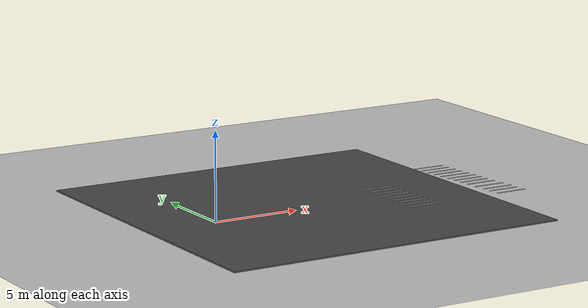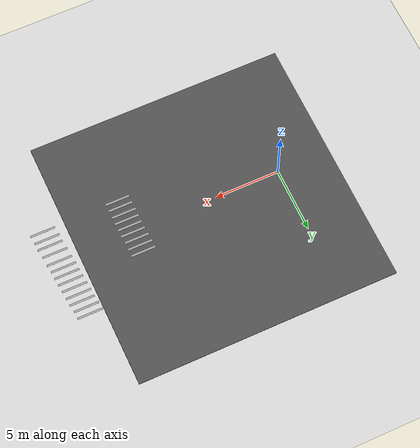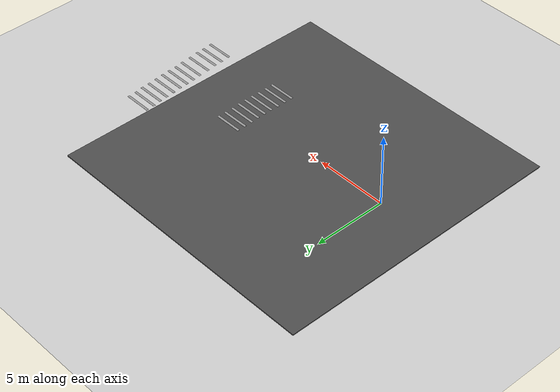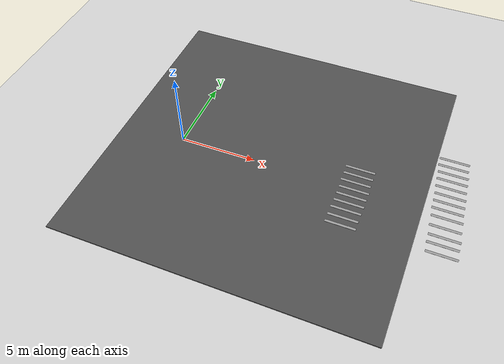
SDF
<sdf version="1.7">
 <world name="default">
  <model name="ground_plane">
   <static>1</static>
   <link name="link">
    <collision name="collision">
     <geometry><plane><normal>0 0 1</normal><size>100 100</size></plane></geometry>
     <surface><friction><ode><mu>100</mu><mu2>50</mu2></ode></friction></surface>
    </collision>
    <visual name="visual">
     <cast_shadows>0</cast_shadows>
     <geometry><plane><normal>0 0 1</normal><size>100 100</size></plane></geometry>
     <material>
      <script><uri>file://media/materials/scripts/gazebo.material</uri><name>Gazebo/Grey</name></script>
     </material>
    </visual>
   </link>
  </model>
  <model name="asphalt_plane">
   <static>1</static>
   <link name="link">
    <collision name="collision"><geometry><box><size>20 20.0001 0.1</size></box></geometry></collision>
    <visual name="visual">
     <cast_shadows>0</cast_shadows>
     <geometry><box><size>20 20.0001 0.1</size></box></geometry>
     <material>
      <script>
       <uri>model://asphalt_plane/materials/scripts</uri>
       <uri>model://asphalt_plane/materials/textures</uri>
       <name>vrc/asphalt</name>
      </script>
     </material>
    </visual>
   </link>
   <pose>5.82756 0.79161 0 0 -0 0</pose>
  </model>
  <model name="unit_box_clone_3_clone">
   <pose>11.6103 -2.77848 0.053193 0 -0 0.000169</pose>
   <link name="link">
    <inertial>
     <mass>1</mass>
     <inertia>
      <ixx>0.166667</ixx>
      <ixy>0</ixy>
      <ixz>0</ixz>
      <iyy>0.166667</iyy>
      <iyz>0</iyz>
      <izz>0.166667</izz>
     </inertia>
    </inertial>
    <collision name="collision"><geometry><box><size>1.90796 0.165074 0.006387</size></box></geometry></collision>
    <visual name="visual">
     <geometry><box><size>1.90796 0.165074 0.006387</size></box></geometry>
     <material>
      <script><name>Gazebo/Grey</name><uri>file://media/materials/scripts/gazebo.material</uri></script>
     </material>
    </visual>
   </link>
  </model>
  <model name="unit_box_clone_3_clone_0">
   <pose>11.5996 -2.2243 0.053193 0 -0 0.000169</pose>
   <link name="link">
    <inertial>
     <mass>1</mass>
     <inertia>
      <ixx>0.166667</ixx>
      <ixy>0</ixy>
      <ixz>0</ixz>
      <iyy>0.166667</iyy>
      <iyz>0</iyz>
      <izz>0.166667</izz>
     </inertia>
    </inertial>
    <collision name="collision"><geometry><box><size>1.90796 0.165074 0.006387</size></box></geometry></collision>
    <visual name="visual">
     <geometry><box><size>1.90796 0.165074 0.006387</size></box></geometry>
     <material>
      <script><name>Gazebo/Grey</name><uri>file://media/materials/scripts/gazebo.material</uri></script>
     </material>
    </visual>
   </link>
  </model>
  <model name="unit_box_clone_3_clone_1">
   <pose>11.5931 -1.6331 0.053193 0 -0 0.000169</pose>
   <link name="link">
    <inertial>
     <mass>1</mass>
     <inertia>
      <ixx>0.166667</ixx>
      <ixy>0</ixy>
      <ixz>0</ixz>
      <iyy>0.166667</iyy>
      <iyz>0</iyz>
      <izz>0.166667</izz>
     </inertia>
    </inertial>
    <collision name="collision"><geometry><box><size>1.90796 0.165074 0.006387</size></box></geometry></collision>
    <visual name="visual">
     <geometry><box><size>1.90796 0.165074 0.006387</size></box></geometry>
     <material>
      <script><name>Gazebo/Grey</name><uri>file://media/materials/scripts/gazebo.material</uri></script>
     </material>
    </visual>
   </link>
  </model>
  <model name="unit_box_clone_3_clone_2">
   <pose>11.6174 -1.07884 0.053193 0 -0 0.000169</pose>
   <link name="link">
    <inertial>
     <mass>1</mass>
     <inertia>
      <ixx>0.166667</ixx>
      <ixy>0</ixy>
      <ixz>0</ixz>
      <iyy>0.166667</iyy>
      <iyz>0</iyz>
      <izz>0.166667</izz>
     </inertia>
    </inertial>
    <collision name="collision"><geometry><box><size>1.90796 0.165074 0.006387</size></box></geometry></collision>
    <visual name="visual">
     <geometry><box><size>1.90796 0.165074 0.006387</size></box></geometry>
     <material>
      <script><name>Gazebo/Grey</name><uri>file://media/materials/scripts/gazebo.material</uri></script>
     </material>
    </visual>
   </link>
  </model>
  <model name="unit_box_clone_3_clone_3">
   <pose>11.605 -0.530038 0.053193 0 -0 0.000169</pose>
   <link name="link">
    <inertial>
     <mass>1</mass>
     <inertia>
      <ixx>0.166667</ixx>
      <ixy>0</ixy>
      <ixz>0</ixz>
      <iyy>0.166667</iyy>
      <iyz>0</iyz>
      <izz>0.166667</izz>
     </inertia>
    </inertial>
    <collision name="collision"><geometry><box><size>1.90796 0.165074 0.006387</size></box></geometry></collision>
    <visual name="visual">
     <geometry><box><size>1.90796 0.165074 0.006387</size></box></geometry>
     <material>
      <script><name>Gazebo/Grey</name><uri>file://media/materials/scripts/gazebo.material</uri></script>
     </material>
    </visual>
   </link>
  </model>
  <model name="unit_box_clone_3_clone_4">
   <pose>11.6043 0.019375 0.053193 0 -0 0.000169</pose>
   <link name="link">
    <inertial>
     <mass>1</mass>
     <inertia>
      <ixx>0.166667</ixx>
      <ixy>0</ixy>
      <ixz>0</ixz>
      <iyy>0.166667</iyy>
      <iyz>0</iyz>
      <izz>0.166667</izz>
     </inertia>
    </inertial>
    <collision name="collision"><geometry><box><size>1.90796 0.165074 0.006387</size></box></geometry></collision>
    <visual name="visual">
     <geometry><box><size>1.90796 0.165074 0.006387</size></box></geometry>
     <material>
      <script><name>Gazebo/Grey</name><uri>file://media/materials/scripts/gazebo.material</uri></script>
     </material>
    </visual>
   </link>
  </model>
  <model name="unit_box_clone_3_clone_4_clone">
   <pose>11.5465 0.589654 0.053193 0 -0 0.000169</pose>
   <link name="link">
    <inertial>
     <mass>1</mass>
     <inertia>
      <ixx>0.166667</ixx>
      <ixy>0</ixy>
      <ixz>0</ixz>
      <iyy>0.166667</iyy>
      <iyz>0</iyz>
      <izz>0.166667</izz>
     </inertia>
    </inertial>
    <collision name="collision"><geometry><box><size>1.90796 0.165074 0.006387</size></box></geometry></collision>
    <visual name="visual">
     <geometry><box><size>1.90796 0.165074 0.006387</size></box></geometry>
     <material>
      <script><name>Gazebo/Grey</name><uri>file://media/materials/scripts/gazebo.material</uri></script>
     </material>
    </visual>
   </link>
  </model>
  <model name="unit_box_clone_3_clone_4_clone_0">
   <pose>11.5365 1.16834 0.053193 0 -0 0.000169</pose>
   <link name="link">
    <inertial>
     <mass>1</mass>
     <inertia>
      <ixx>0.166667</ixx>
      <ixy>0</ixy>
      <ixz>0</ixz>
      <iyy>0.166667</iyy>
      <iyz>0</iyz>
      <izz>0.166667</izz>
     </inertia>
    </inertial>
    <collision name="collision"><geometry><box><size>1.90796 0.165074 0.006387</size></box></geometry></collision>
    <visual name="visual">
     <geometry><box><size>1.90796 0.165074 0.006387</size></box></geometry>
     <material>
      <script><name>Gazebo/Grey</name><uri>file://media/materials/scripts/gazebo.material</uri></script>
     </material>
    </visual>
   </link>
  </model>
  <model name="unit_box_clone_3_clone_4_clone_1">
   <pose>11.5239 1.72543 0.053193 0 -0 0.000169</pose>
   <link name="link">
    <inertial>
     <mass>1</mass>
     <inertia>
      <ixx>0.166667</ixx>
      <ixy>0</ixy>
      <ixz>0</ixz>
      <iyy>0.166667</iyy>
      <iyz>0</iyz>
      <izz>0.166667</izz>
     </inertia>
    </inertial>
    <collision name="collision"><geometry><box><size>1.90796 0.165074 0.006387</size></box></geometry></collision>
    <visual name="visual">
     <geometry><box><size>1.90796 0.165074 0.006387</size></box></geometry>
     <material>
      <script><name>Gazebo/Grey</name><uri>file://media/materials/scripts/gazebo.material</uri></script>
     </material>
    </visual>
   </link>
  </model>
  <model name="unit_box_clone_3_clone_4_clone_23">
   <pose>16.8665 4.55563 0.053193 0 -0 0.000169</pose>
   <link name="link">
    <inertial>
     <mass>1</mass>
     <inertia>
      <ixx>0.166667</ixx>
      <ixy>0</ixy>
      <ixz>0</ixz>
      <iyy>0.166667</iyy>
      <iyz>0</iyz>
      <izz>0.166667</izz>
     </inertia>
    </inertial>
    <collision name="collision"><geometry><box><size>1.90796 0.165074 0.006387</size></box></geometry></collision>
    <visual name="visual">
     <geometry><box><size>1.90796 0.165074 0.006387</size></box></geometry>
     <material>
      <script><name>Gazebo/Grey</name><uri>file://media/materials/scripts/gazebo.material</uri></script>
     </material>
    </visual>
   </link>
  </model>
  <model name="unit_box_clone_3_clone_4_clone_24">
   <pose>16.8933 3.98392 0.053193 0 -0 0.000169</pose>
   <link name="link">
    <inertial>
     <mass>1</mass>
     <inertia>
      <ixx>0.166667</ixx>
      <ixy>0</ixy>
      <ixz>0</ixz>
      <iyy>0.166667</iyy>
      <iyz>0</iyz>
      <izz>0.166667</izz>
     </inertia>
    </inertial>
    <collision name="collision"><geometry><box><size>1.90796 0.165074 0.006387</size></box></geometry></collision>
    <visual name="visual">
     <geometry><box><size>1.90796 0.165074 0.006387</size></box></geometry>
     <material>
      <script><name>Gazebo/Grey</name><uri>file://media/materials/scripts/gazebo.material</uri></script>
     </material>
    </visual>
   </link>
  </model>
  <model name="unit_box_clone_3_clone_4_clone_25">
   <pose>16.9916 3.40601 0.053193 0 -0 0.000169</pose>
   <link name="link">
    <inertial>
     <mass>1</mass>
     <inertia>
      <ixx>0.166667</ixx>
      <ixy>0</ixy>
      <ixz>0</ixz>
      <iyy>0.166667</iyy>
      <iyz>0</iyz>
      <izz>0.166667</izz>
     </inertia>
    </inertial>
    <collision name="collision"><geometry><box><size>1.90796 0.165074 0.006387</size></box></geometry></collision>
    <visual name="visual">
     <geometry><box><size>1.90796 0.165074 0.006387</size></box></geometry>
     <material>
      <script><name>Gazebo/Grey</name><uri>file://media/materials/scripts/gazebo.material</uri></script>
     </material>
    </visual>
   </link>
  </model>
  <model name="unit_box_clone_3_clone_4_clone_26">
   <pose>17.0297 2.83727 0.053193 0 -0 0.000169</pose>
   <link name="link">
    <inertial>
     <mass>1</mass>
     <inertia>
      <ixx>0.166667</ixx>
      <ixy>0</ixy>
      <ixz>0</ixz>
      <iyy>0.166667</iyy>
      <iyz>0</iyz>
      <izz>0.166667</izz>
     </inertia>
    </inertial>
    <collision name="collision"><geometry><box><size>1.90796 0.165074 0.006387</size></box></geometry></collision>
    <visual name="visual">
     <geometry><box><size>1.90796 0.165074 0.006387</size></box></geometry>
     <material>
      <script><name>Gazebo/Grey</name><uri>file://media/materials/scripts/gazebo.material</uri></script>
     </material>
    </visual>
   </link>
  </model>
  <model name="unit_box_clone_3_clone_4_clone_27">
   <pose>17.0745 2.23337 0.053193 0 -0 0.000169</pose>
   <link name="link">
    <inertial>
     <mass>1</mass>
     <inertia>
      <ixx>0.166667</ixx>
      <ixy>0</ixy>
      <ixz>0</ixz>
      <iyy>0.166667</iyy>
      <iyz>0</iyz>
      <izz>0.166667</izz>
     </inertia>
    </inertial>
    <collision name="collision"><geometry><box><size>1.90796 0.165074 0.006387</size></box></geometry></collision>
    <visual name="visual">
     <geometry><box><size>1.90796 0.165074 0.006387</size></box></geometry>
     <material>
      <script><name>Gazebo/Grey</name><uri>file://media/materials/scripts/gazebo.material</uri></script>
     </material>
    </visual>
   </link>
  </model>
  <model name="unit_box_clone_3_clone_4_clone_28">
   <pose>17.1447 1.64083 0.053193 0 -0 0.000169</pose>
   <link name="link">
    <inertial>
     <mass>1</mass>
     <inertia>
      <ixx>0.166667</ixx>
      <ixy>0</ixy>
      <ixz>0</ixz>
      <iyy>0.166667</iyy>
      <iyz>0</iyz>
      <izz>0.166667</izz>
     </inertia>
    </inertial>
    <collision name="collision"><geometry><box><size>1.90796 0.165074 0.006387</size></box></geometry></collision>
    <visual name="visual">
     <geometry><box><size>1.90796 0.165074 0.006387</size></box></geometry>
     <material>
      <script><name>Gazebo/Grey</name><uri>file://media/materials/scripts/gazebo.material</uri></script>
     </material>
    </visual>
   </link>
  </model>
  <model name="unit_box_clone_3_clone_4_clone_29">
   <pose>17.1808 1.06672 0.053193 0 -0 0.000169</pose>
   <link name="link">
    <inertial>
     <mass>1</mass>
     <inertia>
      <ixx>0.166667</ixx>
      <ixy>0</ixy>
      <ixz>0</ixz>
      <iyy>0.166667</iyy>
      <iyz>0</iyz>
      <izz>0.166667</izz>
     </inertia>
    </inertial>
    <collision name="collision"><geometry><box><size>1.90796 0.165074 0.006387</size></box></geometry></collision>
    <visual name="visual">
     <geometry><box><size>1.90796 0.165074 0.006387</size></box></geometry>
     <material>
      <script><name>Gazebo/Grey</name><uri>file://media/materials/scripts/gazebo.material</uri></script>
     </material>
    </visual>
   </link>
  </model>
  <model name="unit_box_clone_3_clone_4_clone_30">
   <pose>17.2045 0.496159 0.053193 0 -0 0.000169</pose>
   <link name="link">
    <inertial>
     <mass>1</mass>
     <inertia>
      <ixx>0.166667</ixx>
      <ixy>0</ixy>
      <ixz>0</ixz>
      <iyy>0.166667</iyy>
      <iyz>0</iyz>
      <izz>0.166667</izz>
     </inertia>
    </inertial>
    <collision name="collision"><geometry><box><size>1.90796 0.165074 0.006387</size></box></geometry></collision>
    <visual name="visual">
     <geometry><box><size>1.90796 0.165074 0.006387</size></box></geometry>
     <material>
      <script><name>Gazebo/Grey</name><uri>file://media/materials/scripts/gazebo.material</uri></script>
     </material>
    </visual>
   </link>
  </model>
  <model name="unit_box_clone_3_clone_4_clone_31">
   <pose>17.2859 -0.091052 0.053193 0 -0 0.000169</pose>
   <link name="link">
    <inertial>
     <mass>1</mass>
     <inertia>
      <ixx>0.166667</ixx>
      <ixy>0</ixy>
      <ixz>0</ixz>
      <iyy>0.166667</iyy>
      <iyz>0</iyz>
      <izz>0.166667</izz>
     </inertia>
    </inertial>
    <collision name="collision"><geometry><box><size>1.90796 0.165074 0.006387</size></box></geometry></collision>
    <visual name="visual">
     <geometry><box><size>1.90796 0.165074 0.006387</size></box></geometry>
     <material>
      <script><name>Gazebo/Grey</name><uri>file://media/materials/scripts/gazebo.material</uri></script>
     </material>
    </visual>
   </link>
  </model>
  <model name="unit_box_clone_3_clone_4_clone_32">
   <pose>17.3357 -0.803853 0.053193 0 -0 0.000169</pose>
   <link name="link">
    <inertial>
     <mass>1</mass>
     <inertia>
      <ixx>0.166667</ixx>
      <ixy>0</ixy>
      <ixz>0</ixz>
      <iyy>0.166667</iyy>
      <iyz>0</iyz>
      <izz>0.166667</izz>
     </inertia>
    </inertial>
    <collision name="collision"><geometry><box><size>1.90796 0.165074 0.006387</size></box></geometry></collision>
    <visual name="visual">
     <geometry><box><size>1.90796 0.165074 0.006387</size></box></geometry>
     <material>
      <script><name>Gazebo/Grey</name><uri>file://media/materials/scripts/gazebo.material</uri></script>
     </material>
    </visual>
   </link>
  </model>
  <model name="unit_box_clone_3_clone_4_clone_33">
   <pose>17.4254 -1.48235 0.053193 0 -0 0.000169</pose>
   <link name="link">
    <inertial>
     <mass>1</mass>
     <inertia>
      <ixx>0.166667</ixx>
      <ixy>0</ixy>
      <ixz>0</ixz>
      <iyy>0.166667</iyy>
      <iyz>0</iyz>
      <izz>0.166667</izz>
     </inertia>
    </inertial>
    <collision name="collision"><geometry><box><size>1.90796 0.165074 0.006387</size></box></geometry></collision>
    <visual name="visual">
     <geometry><box><size>1.90796 0.165074 0.006387</size></box></geometry>
     <material>
      <script><name>Gazebo/Grey</name><uri>file://media/materials/scripts/gazebo.material</uri></script>
     </material>
    </visual>
   </link>
  </model>
  <model name="unit_box_clone_3_clone_4_clone_34">
   <pose>17.4378 -2.04198 0.053193 0 -0 0.000169</pose>
   <link name="link">
    <inertial>
     <mass>1</mass>
     <inertia>
      <ixx>0.166667</ixx>
      <ixy>0</ixy>
      <ixz>0</ixz>
      <iyy>0.166667</iyy>
      <iyz>0</iyz>
      <izz>0.166667</izz>
     </inertia>
    </inertial>
    <collision name="collision"><geometry><box><size>1.90796 0.165074 0.006387</size></box></geometry></collision>
    <visual name="visual">
     <geometry><box><size>1.90796 0.165074 0.006387</size></box></geometry>
     <material>
      <script><name>Gazebo/Grey</name><uri>file://media/materials/scripts/gazebo.material</uri></script>
     </material>
    </visual>
   </link>
  </model>
  <model name="unit_box_clone_3_clone_4_clone_35">
   <pose>17.507 -2.68902 0.053193 0 -0 0.000169</pose>
   <link name="link">
    <inertial>
     <mass>1</mass>
     <inertia>
      <ixx>0.166667</ixx>
      <ixy>0</ixy>
      <ixz>0</ixz>
      <iyy>0.166667</iyy>
      <iyz>0</iyz>
      <izz>0.166667</izz>
     </inertia>
    </inertial>
    <collision name="collision"><geometry><box><size>1.90796 0.165074 0.006387</size></box></geometry></collision>
    <visual name="visual">
     <geometry><box><size>1.90796 0.165074 0.006387</size></box></geometry>
     <material>
      <script><name>Gazebo/Grey</name><uri>file://media/materials/scripts/gazebo.material</uri></script>
     </material>
    </visual>
   </link>
  </model>
 </world>
</sdf>
